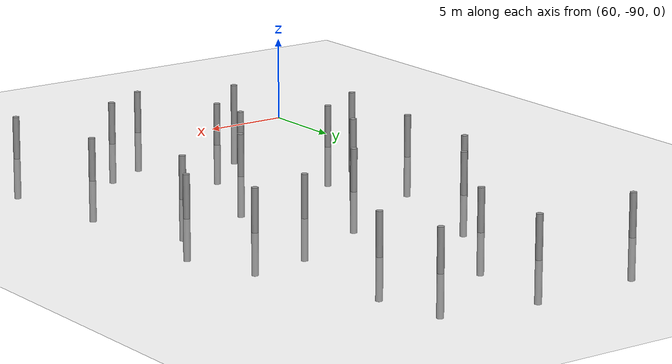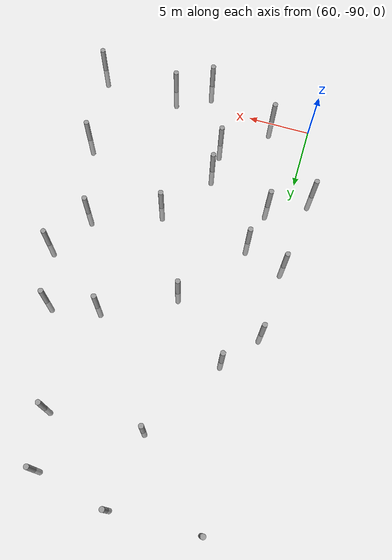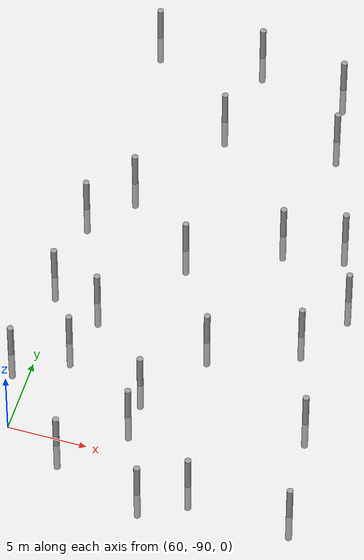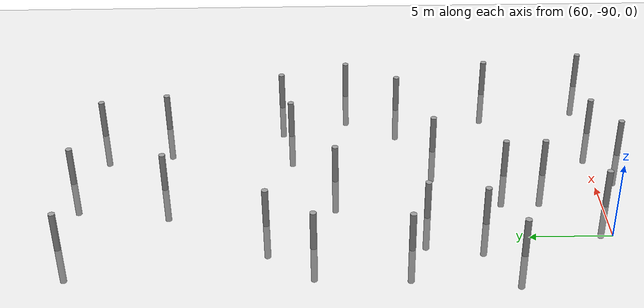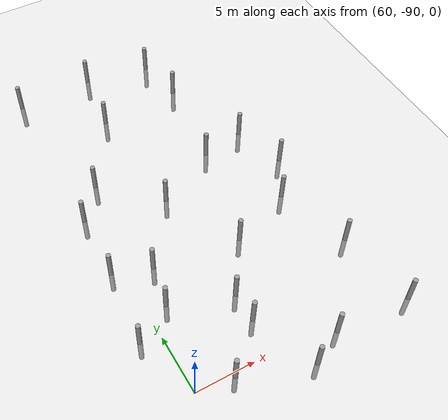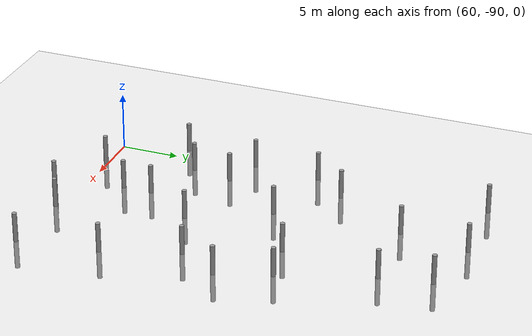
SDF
<sdf version="1.6">
 <world name="default">
  <model name="ground_plane">
   <static>1</static>
   <link name="link">
    <collision name="collision">
     <geometry><plane><normal>0 0 1</normal><size>100 100</size></plane></geometry>
     <surface><friction><ode><mu>100</mu><mu2>50</mu2></ode></friction></surface>
    </collision>
    <visual name="visual">
     <cast_shadows>0</cast_shadows>
     <geometry><plane><normal>0 0 1</normal><size>100 100</size></plane></geometry>
     <material>
      <script><uri>file://media/materials/scripts/gazebo.material</uri><name>Gazebo/Grey</name></script>
     </material>
    </visual>
   </link>
  </model>
  <model name="empty_pillars_13">
   <link name="link">
    <inertial>
     <mass>1</mass>
     <inertia><ixx>0.145833</ixx><ixy>0</ixy><ixz>0</ixz><iyy>0.145833</iyy><iyz>0</iyz><izz>0.125</izz></inertia>
    </inertial>
    <visual name="visual">
     <geometry><cylinder><radius>0.2</radius><length>5</length></cylinder></geometry>
     <material>
      <script><name>Gazebo/Grey</name><uri>file://media/materials/scripts/gazebo.material</uri></script>
      <shader type="vertex"><normal_map>__default__</normal_map></shader>
      <ambient>0.3 0.3 0.3 1</ambient>
      <diffuse>0.7 0.7 0.7 1</diffuse>
      <specular>0.01 0.01 0.01 1</specular>
      <emissive>0 0 0 1</emissive>
     </material>
    </visual>
    <collision name="collision">
     <geometry><cylinder><radius>0.05</radius><length>5</length></cylinder></geometry>
     <surface>
      <friction>
       <ode><mu>1</mu><mu2>1</mu2><fdir1>0 0 0</fdir1><slip1>0</slip1><slip2>0</slip2></ode>
       <torsional>
        <coefficient>1</coefficient>
        <patch_radius>0</patch_radius>
        <surface_radius>0</surface_radius>
        <use_patch_radius>1</use_patch_radius>
        <ode><slip>0</slip></ode>
       </torsional>
      </friction>
      <bounce><restitution_coefficient>0</restitution_coefficient><threshold>1e+06</threshold></bounce>
      <contact>
       <collide_without_contact>0</collide_without_contact>
       <collide_without_contact_bitmask>1</collide_without_contact_bitmask>
       <collide_bitmask>1</collide_bitmask>
       <ode>
        <soft_cfm>0</soft_cfm>
        <soft_erp>0.2</soft_erp>
        <kp>1e+13</kp>
        <kd>1</kd>
        <max_vel>0.01</max_vel>
        <min_depth>0</min_depth>
       </ode>
       <bullet>
        <split_impulse>1</split_impulse>
        <split_impulse_penetration_threshold>-0.01</split_impulse_penetration_threshold>
        <soft_cfm>0</soft_cfm>
        <soft_erp>0.2</soft_erp>
        <kp>1e+13</kp>
        <kd>1</kd>
       </bullet>
      </contact>
     </surface>
    </collision>
   </link>
   <model name="empty_pillar">
    <link name="link">
     <inertial>
      <mass>1</mass>
      <inertia><ixx>0.145833</ixx><ixy>0</ixy><ixz>0</ixz><iyy>0.145833</iyy><iyz>0</iyz><izz>0.125</izz></inertia>
     </inertial>
     <visual name="visual">
      <geometry><cylinder><radius>0.2</radius><length>5</length></cylinder></geometry>
      <material>
       <script><name>Gazebo/Grey</name><uri>file://media/materials/scripts/gazebo.material</uri></script>
       <shader type="vertex"><normal_map>__default__</normal_map></shader>
       <ambient>0.3 0.3 0.3 1</ambient>
       <diffuse>0.7 0.7 0.7 1</diffuse>
       <specular>0.01 0.01 0.01 1</specular>
       <emissive>0 0 0 1</emissive>
      </material>
     </visual>
     <collision name="collision">
      <geometry><cylinder><radius>0.05</radius><length>5</length></cylinder></geometry>
      <surface>
       <friction>
        <ode><mu>1</mu><mu2>1</mu2><fdir1>0 0 0</fdir1><slip1>0</slip1><slip2>0</slip2></ode>
        <torsional>
         <coefficient>1</coefficient>
         <patch_radius>0</patch_radius>
         <surface_radius>0</surface_radius>
         <use_patch_radius>1</use_patch_radius>
         <ode><slip>0</slip></ode>
        </torsional>
       </friction>
       <bounce><restitution_coefficient>0</restitution_coefficient><threshold>1e+06</threshold></bounce>
       <contact>
        <collide_without_contact>0</collide_without_contact>
        <collide_without_contact_bitmask>1</collide_without_contact_bitmask>
        <collide_bitmask>1</collide_bitmask>
        <ode>
         <soft_cfm>0</soft_cfm>
         <soft_erp>0.2</soft_erp>
         <kp>1e+13</kp>
         <kd>1</kd>
         <max_vel>0.01</max_vel>
         <min_depth>0</min_depth>
        </ode>
        <bullet>
         <split_impulse>1</split_impulse>
         <split_impulse_penetration_threshold>-0.01</split_impulse_penetration_threshold>
         <soft_cfm>0</soft_cfm>
         <soft_erp>0.2</soft_erp>
         <kp>1e+13</kp>
         <kd>1</kd>
        </bullet>
       </contact>
      </surface>
     </collision>
    </link>
    <static>0</static>
    <pose>-3.84527 -0.717439 0 0 -0 0</pose>
   </model>
   <model name="empty_pillar_clone">
    <link name="link">
     <inertial>
      <mass>1</mass>
      <inertia><ixx>0.145833</ixx><ixy>0</ixy><ixz>0</ixz><iyy>0.145833</iyy><iyz>0</iyz><izz>0.125</izz></inertia>
     </inertial>
     <visual name="visual">
      <geometry><cylinder><radius>0.2</radius><length>5</length></cylinder></geometry>
      <material>
       <script><name>Gazebo/Grey</name><uri>file://media/materials/scripts/gazebo.material</uri></script>
       <shader type="vertex"><normal_map>__default__</normal_map></shader>
       <ambient>0.3 0.3 0.3 1</ambient>
       <diffuse>0.7 0.7 0.7 1</diffuse>
       <specular>0.01 0.01 0.01 1</specular>
       <emissive>0 0 0 1</emissive>
      </material>
     </visual>
     <collision name="collision">
      <geometry><cylinder><radius>0.05</radius><length>5</length></cylinder></geometry>
      <surface>
       <friction>
        <ode><mu>1</mu><mu2>1</mu2><fdir1>0 0 0</fdir1><slip1>0</slip1><slip2>0</slip2></ode>
        <torsional>
         <coefficient>1</coefficient>
         <patch_radius>0</patch_radius>
         <surface_radius>0</surface_radius>
         <use_patch_radius>1</use_patch_radius>
         <ode><slip>0</slip></ode>
        </torsional>
       </friction>
       <bounce><restitution_coefficient>0</restitution_coefficient><threshold>1e+06</threshold></bounce>
       <contact>
        <collide_without_contact>0</collide_without_contact>
        <collide_without_contact_bitmask>1</collide_without_contact_bitmask>
        <collide_bitmask>1</collide_bitmask>
        <ode>
         <soft_cfm>0</soft_cfm>
         <soft_erp>0.2</soft_erp>
         <kp>1e+13</kp>
         <kd>1</kd>
         <max_vel>0.01</max_vel>
         <min_depth>0</min_depth>
        </ode>
        <bullet>
         <split_impulse>1</split_impulse>
         <split_impulse_penetration_threshold>-0.01</split_impulse_penetration_threshold>
         <soft_cfm>0</soft_cfm>
         <soft_erp>0.2</soft_erp>
         <kp>1e+13</kp>
         <kd>1</kd>
        </bullet>
       </contact>
      </surface>
     </collision>
    </link>
    <static>0</static>
    <pose>1.47843 -4.49529 0 0 -0 0</pose>
   </model>
   <model name="empty_pillar_clone_12">
    <link name="link">
     <inertial>
      <mass>1</mass>
      <inertia><ixx>0.145833</ixx><ixy>0</ixy><ixz>0</ixz><iyy>0.145833</iyy><iyz>0</iyz><izz>0.125</izz></inertia>
     </inertial>
     <visual name="visual">
      <geometry><cylinder><radius>0.2</radius><length>5</length></cylinder></geometry>
      <material>
       <script><name>Gazebo/Grey</name><uri>file://media/materials/scripts/gazebo.material</uri></script>
       <shader type="vertex"><normal_map>__default__</normal_map></shader>
       <ambient>0.3 0.3 0.3 1</ambient>
       <diffuse>0.7 0.7 0.7 1</diffuse>
       <specular>0.01 0.01 0.01 1</specular>
       <emissive>0 0 0 1</emissive>
      </material>
     </visual>
     <collision name="collision">
      <geometry><cylinder><radius>0.05</radius><length>5</length></cylinder></geometry>
      <surface>
       <friction>
        <ode><mu>1</mu><mu2>1</mu2><fdir1>0 0 0</fdir1><slip1>0</slip1><slip2>0</slip2></ode>
        <torsional>
         <coefficient>1</coefficient>
         <patch_radius>0</patch_radius>
         <surface_radius>0</surface_radius>
         <use_patch_radius>1</use_patch_radius>
         <ode><slip>0</slip></ode>
        </torsional>
       </friction>
       <bounce><restitution_coefficient>0</restitution_coefficient><threshold>1e+06</threshold></bounce>
       <contact>
        <collide_without_contact>0</collide_without_contact>
        <collide_without_contact_bitmask>1</collide_without_contact_bitmask>
        <collide_bitmask>1</collide_bitmask>
        <ode>
         <soft_cfm>0</soft_cfm>
         <soft_erp>0.2</soft_erp>
         <kp>1e+13</kp>
         <kd>1</kd>
         <max_vel>0.01</max_vel>
         <min_depth>0</min_depth>
        </ode>
        <bullet>
         <split_impulse>1</split_impulse>
         <split_impulse_penetration_threshold>-0.01</split_impulse_penetration_threshold>
         <soft_cfm>0</soft_cfm>
         <soft_erp>0.2</soft_erp>
         <kp>1e+13</kp>
         <kd>1</kd>
        </bullet>
       </contact>
      </surface>
     </collision>
    </link>
    <static>0</static>
    <pose>-4.01464 -20.8403 0 0 -0 0</pose>
   </model>
   <model name="empty_pillar_clone_13">
    <link name="link">
     <inertial>
      <mass>1</mass>
      <inertia><ixx>0.145833</ixx><ixy>0</ixy><ixz>0</ixz><iyy>0.145833</iyy><iyz>0</iyz><izz>0.125</izz></inertia>
     </inertial>
     <visual name="visual">
      <geometry><cylinder><radius>0.2</radius><length>5</length></cylinder></geometry>
      <material>
       <script><name>Gazebo/Grey</name><uri>file://media/materials/scripts/gazebo.material</uri></script>
       <shader type="vertex"><normal_map>__default__</normal_map></shader>
       <ambient>0.3 0.3 0.3 1</ambient>
       <diffuse>0.7 0.7 0.7 1</diffuse>
       <specular>0.01 0.01 0.01 1</specular>
       <emissive>0 0 0 1</emissive>
      </material>
     </visual>
     <collision name="collision">
      <geometry><cylinder><radius>0.05</radius><length>5</length></cylinder></geometry>
      <surface>
       <friction>
        <ode><mu>1</mu><mu2>1</mu2><fdir1>0 0 0</fdir1><slip1>0</slip1><slip2>0</slip2></ode>
        <torsional>
         <coefficient>1</coefficient>
         <patch_radius>0</patch_radius>
         <surface_radius>0</surface_radius>
         <use_patch_radius>1</use_patch_radius>
         <ode><slip>0</slip></ode>
        </torsional>
       </friction>
       <bounce><restitution_coefficient>0</restitution_coefficient><threshold>1e+06</threshold></bounce>
       <contact>
        <collide_without_contact>0</collide_without_contact>
        <collide_without_contact_bitmask>1</collide_without_contact_bitmask>
        <collide_bitmask>1</collide_bitmask>
        <ode>
         <soft_cfm>0</soft_cfm>
         <soft_erp>0.2</soft_erp>
         <kp>1e+13</kp>
         <kd>1</kd>
         <max_vel>0.01</max_vel>
         <min_depth>0</min_depth>
        </ode>
        <bullet>
         <split_impulse>1</split_impulse>
         <split_impulse_penetration_threshold>-0.01</split_impulse_penetration_threshold>
         <soft_cfm>0</soft_cfm>
         <soft_erp>0.2</soft_erp>
         <kp>1e+13</kp>
         <kd>1</kd>
        </bullet>
       </contact>
      </surface>
     </collision>
    </link>
    <static>0</static>
    <pose>-9.01464 -14.4259 0 0 -0 0</pose>
   </model>
   <model name="empty_pillar_clone_14">
    <link name="link">
     <inertial>
      <mass>1</mass>
      <inertia><ixx>0.145833</ixx><ixy>0</ixy><ixz>0</ixz><iyy>0.145833</iyy><iyz>0</iyz><izz>0.125</izz></inertia>
     </inertial>
     <visual name="visual">
      <geometry><cylinder><radius>0.2</radius><length>5</length></cylinder></geometry>
      <material>
       <script><name>Gazebo/Grey</name><uri>file://media/materials/scripts/gazebo.material</uri></script>
       <shader type="vertex"><normal_map>__default__</normal_map></shader>
       <ambient>0.3 0.3 0.3 1</ambient>
       <diffuse>0.7 0.7 0.7 1</diffuse>
       <specular>0.01 0.01 0.01 1</specular>
       <emissive>0 0 0 1</emissive>
      </material>
     </visual>
     <collision name="collision">
      <geometry><cylinder><radius>0.05</radius><length>5</length></cylinder></geometry>
      <surface>
       <friction>
        <ode><mu>1</mu><mu2>1</mu2><fdir1>0 0 0</fdir1><slip1>0</slip1><slip2>0</slip2></ode>
        <torsional>
         <coefficient>1</coefficient>
         <patch_radius>0</patch_radius>
         <surface_radius>0</surface_radius>
         <use_patch_radius>1</use_patch_radius>
         <ode><slip>0</slip></ode>
        </torsional>
       </friction>
       <bounce><restitution_coefficient>0</restitution_coefficient><threshold>1e+06</threshold></bounce>
       <contact>
        <collide_without_contact>0</collide_without_contact>
        <collide_without_contact_bitmask>1</collide_without_contact_bitmask>
        <collide_bitmask>1</collide_bitmask>
        <ode>
         <soft_cfm>0</soft_cfm>
         <soft_erp>0.2</soft_erp>
         <kp>1e+13</kp>
         <kd>1</kd>
         <max_vel>0.01</max_vel>
         <min_depth>0</min_depth>
        </ode>
        <bullet>
         <split_impulse>1</split_impulse>
         <split_impulse_penetration_threshold>-0.01</split_impulse_penetration_threshold>
         <soft_cfm>0</soft_cfm>
         <soft_erp>0.2</soft_erp>
         <kp>1e+13</kp>
         <kd>1</kd>
        </bullet>
       </contact>
      </surface>
     </collision>
    </link>
    <static>0</static>
    <pose>-14.0146 0.646152 0 0 -0 0</pose>
   </model>
   <model name="empty_pillar_clone_15">
    <link name="link">
     <inertial>
      <mass>1</mass>
      <inertia><ixx>0.145833</ixx><ixy>0</ixy><ixz>0</ixz><iyy>0.145833</iyy><iyz>0</iyz><izz>0.125</izz></inertia>
     </inertial>
     <visual name="visual">
      <geometry><cylinder><radius>0.2</radius><length>5</length></cylinder></geometry>
      <material>
       <script><name>Gazebo/Grey</name><uri>file://media/materials/scripts/gazebo.material</uri></script>
       <shader type="vertex"><normal_map>__default__</normal_map></shader>
       <ambient>0.3 0.3 0.3 1</ambient>
       <diffuse>0.7 0.7 0.7 1</diffuse>
       <specular>0.01 0.01 0.01 1</specular>
       <emissive>0 0 0 1</emissive>
      </material>
     </visual>
     <collision name="collision">
      <geometry><cylinder><radius>0.05</radius><length>5</length></cylinder></geometry>
      <surface>
       <friction>
        <ode><mu>1</mu><mu2>1</mu2><fdir1>0 0 0</fdir1><slip1>0</slip1><slip2>0</slip2></ode>
        <torsional>
         <coefficient>1</coefficient>
         <patch_radius>0</patch_radius>
         <surface_radius>0</surface_radius>
         <use_patch_radius>1</use_patch_radius>
         <ode><slip>0</slip></ode>
        </torsional>
       </friction>
       <bounce><restitution_coefficient>0</restitution_coefficient><threshold>1e+06</threshold></bounce>
       <contact>
        <collide_without_contact>0</collide_without_contact>
        <collide_without_contact_bitmask>1</collide_without_contact_bitmask>
        <collide_bitmask>1</collide_bitmask>
        <ode>
         <soft_cfm>0</soft_cfm>
         <soft_erp>0.2</soft_erp>
         <kp>1e+13</kp>
         <kd>1</kd>
         <max_vel>0.01</max_vel>
         <min_depth>0</min_depth>
        </ode>
        <bullet>
         <split_impulse>1</split_impulse>
         <split_impulse_penetration_threshold>-0.01</split_impulse_penetration_threshold>
         <soft_cfm>0</soft_cfm>
         <soft_erp>0.2</soft_erp>
         <kp>1e+13</kp>
         <kd>1</kd>
        </bullet>
       </contact>
      </surface>
     </collision>
    </link>
    <static>0</static>
    <pose>-9.37193 -3.58732 0 0 -0 0</pose>
   </model>
   <model name="empty_pillar_clone_16">
    <link name="link">
     <inertial>
      <mass>1</mass>
      <inertia><ixx>0.145833</ixx><ixy>0</ixy><ixz>0</ixz><iyy>0.145833</iyy><iyz>0</iyz><izz>0.125</izz></inertia>
     </inertial>
     <visual name="visual">
      <geometry><cylinder><radius>0.2</radius><length>5</length></cylinder></geometry>
      <material>
       <script><name>Gazebo/Grey</name><uri>file://media/materials/scripts/gazebo.material</uri></script>
       <shader type="vertex"><normal_map>__default__</normal_map></shader>
       <ambient>0.3 0.3 0.3 1</ambient>
       <diffuse>0.7 0.7 0.7 1</diffuse>
       <specular>0.01 0.01 0.01 1</specular>
       <emissive>0 0 0 1</emissive>
      </material>
     </visual>
     <collision name="collision">
      <geometry><cylinder><radius>0.05</radius><length>5</length></cylinder></geometry>
      <surface>
       <friction>
        <ode><mu>1</mu><mu2>1</mu2><fdir1>0 0 0</fdir1><slip1>0</slip1><slip2>0</slip2></ode>
        <torsional>
         <coefficient>1</coefficient>
         <patch_radius>0</patch_radius>
         <surface_radius>0</surface_radius>
         <use_patch_radius>1</use_patch_radius>
         <ode><slip>0</slip></ode>
        </torsional>
       </friction>
       <bounce><restitution_coefficient>0</restitution_coefficient><threshold>1e+06</threshold></bounce>
       <contact>
        <collide_without_contact>0</collide_without_contact>
        <collide_without_contact_bitmask>1</collide_without_contact_bitmask>
        <collide_bitmask>1</collide_bitmask>
        <ode>
         <soft_cfm>0</soft_cfm>
         <soft_erp>0.2</soft_erp>
         <kp>1e+13</kp>
         <kd>1</kd>
         <max_vel>0.01</max_vel>
         <min_depth>0</min_depth>
        </ode>
        <bullet>
         <split_impulse>1</split_impulse>
         <split_impulse_penetration_threshold>-0.01</split_impulse_penetration_threshold>
         <soft_cfm>0</soft_cfm>
         <soft_erp>0.2</soft_erp>
         <kp>1e+13</kp>
         <kd>1</kd>
        </bullet>
       </contact>
      </surface>
     </collision>
    </link>
    <static>0</static>
    <pose>-9.20789 13.0504 0 0 -0 0</pose>
   </model>
   <model name="empty_pillar_clone_17">
    <link name="link">
     <inertial>
      <mass>1</mass>
      <inertia><ixx>0.145833</ixx><ixy>0</ixy><ixz>0</ixz><iyy>0.145833</iyy><iyz>0</iyz><izz>0.125</izz></inertia>
     </inertial>
     <visual name="visual">
      <geometry><cylinder><radius>0.2</radius><length>5</length></cylinder></geometry>
      <material>
       <script><name>Gazebo/Grey</name><uri>file://media/materials/scripts/gazebo.material</uri></script>
       <shader type="vertex"><normal_map>__default__</normal_map></shader>
       <ambient>0.3 0.3 0.3 1</ambient>
       <diffuse>0.7 0.7 0.7 1</diffuse>
       <specular>0.01 0.01 0.01 1</specular>
       <emissive>0 0 0 1</emissive>
      </material>
     </visual>
     <collision name="collision">
      <geometry><cylinder><radius>0.05</radius><length>5</length></cylinder></geometry>
      <surface>
       <friction>
        <ode><mu>1</mu><mu2>1</mu2><fdir1>0 0 0</fdir1><slip1>0</slip1><slip2>0</slip2></ode>
        <torsional>
         <coefficient>1</coefficient>
         <patch_radius>0</patch_radius>
         <surface_radius>0</surface_radius>
         <use_patch_radius>1</use_patch_radius>
         <ode><slip>0</slip></ode>
        </torsional>
       </friction>
       <bounce><restitution_coefficient>0</restitution_coefficient><threshold>1e+06</threshold></bounce>
       <contact>
        <collide_without_contact>0</collide_without_contact>
        <collide_without_contact_bitmask>1</collide_without_contact_bitmask>
        <collide_bitmask>1</collide_bitmask>
        <ode>
         <soft_cfm>0</soft_cfm>
         <soft_erp>0.2</soft_erp>
         <kp>1e+13</kp>
         <kd>1</kd>
         <max_vel>0.01</max_vel>
         <min_depth>0</min_depth>
        </ode>
        <bullet>
         <split_impulse>1</split_impulse>
         <split_impulse_penetration_threshold>-0.01</split_impulse_penetration_threshold>
         <soft_cfm>0</soft_cfm>
         <soft_erp>0.2</soft_erp>
         <kp>1e+13</kp>
         <kd>1</kd>
        </bullet>
       </contact>
      </surface>
     </collision>
    </link>
    <static>0</static>
    <pose>-16.0449 12.755 0 0 -0 0</pose>
   </model>
   <model name="empty_pillar_clone_19">
    <link name="link">
     <inertial>
      <mass>1</mass>
      <inertia><ixx>0.145833</ixx><ixy>0</ixy><ixz>0</ixz><iyy>0.145833</iyy><iyz>0</iyz><izz>0.125</izz></inertia>
     </inertial>
     <visual name="visual">
      <geometry><cylinder><radius>0.2</radius><length>5</length></cylinder></geometry>
      <material>
       <script><name>Gazebo/Grey</name><uri>file://media/materials/scripts/gazebo.material</uri></script>
       <shader type="vertex"><normal_map>__default__</normal_map></shader>
       <ambient>0.3 0.3 0.3 1</ambient>
       <diffuse>0.7 0.7 0.7 1</diffuse>
       <specular>0.01 0.01 0.01 1</specular>
       <emissive>0 0 0 1</emissive>
      </material>
     </visual>
     <collision name="collision">
      <geometry><cylinder><radius>0.05</radius><length>5</length></cylinder></geometry>
      <surface>
       <friction>
        <ode><mu>1</mu><mu2>1</mu2><fdir1>0 0 0</fdir1><slip1>0</slip1><slip2>0</slip2></ode>
        <torsional>
         <coefficient>1</coefficient>
         <patch_radius>0</patch_radius>
         <surface_radius>0</surface_radius>
         <use_patch_radius>1</use_patch_radius>
         <ode><slip>0</slip></ode>
        </torsional>
       </friction>
       <bounce><restitution_coefficient>0</restitution_coefficient><threshold>1e+06</threshold></bounce>
       <contact>
        <collide_without_contact>0</collide_without_contact>
        <collide_without_contact_bitmask>1</collide_without_contact_bitmask>
        <collide_bitmask>1</collide_bitmask>
        <ode>
         <soft_cfm>0</soft_cfm>
         <soft_erp>0.2</soft_erp>
         <kp>1e+13</kp>
         <kd>1</kd>
         <max_vel>0.01</max_vel>
         <min_depth>0</min_depth>
        </ode>
        <bullet>
         <split_impulse>1</split_impulse>
         <split_impulse_penetration_threshold>-0.01</split_impulse_penetration_threshold>
         <soft_cfm>0</soft_cfm>
         <soft_erp>0.2</soft_erp>
         <kp>1e+13</kp>
         <kd>1</kd>
        </bullet>
       </contact>
      </surface>
     </collision>
    </link>
    <static>0</static>
    <pose>-10.0146 7.15966 0 0 -0 0</pose>
   </model>
   <model name="empty_pillar_clone_24">
    <link name="link">
     <inertial>
      <mass>1</mass>
      <inertia><ixx>0.145833</ixx><ixy>0</ixy><ixz>0</ixz><iyy>0.145833</iyy><iyz>0</iyz><izz>0.125</izz></inertia>
     </inertial>
     <visual name="visual">
      <geometry><cylinder><radius>0.2</radius><length>5</length></cylinder></geometry>
      <material>
       <script><name>Gazebo/Grey</name><uri>file://media/materials/scripts/gazebo.material</uri></script>
       <shader type="vertex"><normal_map>__default__</normal_map></shader>
       <ambient>0.3 0.3 0.3 1</ambient>
       <diffuse>0.7 0.7 0.7 1</diffuse>
       <specular>0.01 0.01 0.01 1</specular>
       <emissive>0 0 0 1</emissive>
      </material>
     </visual>
     <collision name="collision">
      <geometry><cylinder><radius>0.05</radius><length>5</length></cylinder></geometry>
      <surface>
       <friction>
        <ode><mu>1</mu><mu2>1</mu2><fdir1>0 0 0</fdir1><slip1>0</slip1><slip2>0</slip2></ode>
        <torsional>
         <coefficient>1</coefficient>
         <patch_radius>0</patch_radius>
         <surface_radius>0</surface_radius>
         <use_patch_radius>1</use_patch_radius>
         <ode><slip>0</slip></ode>
        </torsional>
       </friction>
       <bounce><restitution_coefficient>0</restitution_coefficient><threshold>1e+06</threshold></bounce>
       <contact>
        <collide_without_contact>0</collide_without_contact>
        <collide_without_contact_bitmask>1</collide_without_contact_bitmask>
        <collide_bitmask>1</collide_bitmask>
        <ode>
         <soft_cfm>0</soft_cfm>
         <soft_erp>0.2</soft_erp>
         <kp>1e+13</kp>
         <kd>1</kd>
         <max_vel>0.01</max_vel>
         <min_depth>0</min_depth>
        </ode>
        <bullet>
         <split_impulse>1</split_impulse>
         <split_impulse_penetration_threshold>-0.01</split_impulse_penetration_threshold>
         <soft_cfm>0</soft_cfm>
         <soft_erp>0.2</soft_erp>
         <kp>1e+13</kp>
         <kd>1</kd>
        </bullet>
       </contact>
      </surface>
     </collision>
    </link>
    <static>0</static>
    <pose>-3.46957 11.9413 0 0 -0 0</pose>
   </model>
   <model name="empty_pillar_clone_37">
    <link name="link">
     <inertial>
      <mass>1</mass>
      <inertia><ixx>0.145833</ixx><ixy>0</ixy><ixz>0</ixz><iyy>0.145833</iyy><iyz>0</iyz><izz>0.125</izz></inertia>
     </inertial>
     <visual name="visual">
      <geometry><cylinder><radius>0.2</radius><length>5</length></cylinder></geometry>
      <material>
       <script><name>Gazebo/Grey</name><uri>file://media/materials/scripts/gazebo.material</uri></script>
       <shader type="vertex"><normal_map>__default__</normal_map></shader>
       <ambient>0.3 0.3 0.3 1</ambient>
       <diffuse>0.7 0.7 0.7 1</diffuse>
       <specular>0.01 0.01 0.01 1</specular>
       <emissive>0 0 0 1</emissive>
      </material>
     </visual>
     <collision name="collision">
      <geometry><cylinder><radius>0.05</radius><length>5</length></cylinder></geometry>
      <surface>
       <friction>
        <ode><mu>1</mu><mu2>1</mu2><fdir1>0 0 0</fdir1><slip1>0</slip1><slip2>0</slip2></ode>
        <torsional>
         <coefficient>1</coefficient>
         <patch_radius>0</patch_radius>
         <surface_radius>0</surface_radius>
         <use_patch_radius>1</use_patch_radius>
         <ode><slip>0</slip></ode>
        </torsional>
       </friction>
       <bounce><restitution_coefficient>0</restitution_coefficient><threshold>1e+06</threshold></bounce>
       <contact>
        <collide_without_contact>0</collide_without_contact>
        <collide_without_contact_bitmask>1</collide_without_contact_bitmask>
        <collide_bitmask>1</collide_bitmask>
        <ode>
         <soft_cfm>0</soft_cfm>
         <soft_erp>0.2</soft_erp>
         <kp>1e+13</kp>
         <kd>1</kd>
         <max_vel>0.01</max_vel>
         <min_depth>0</min_depth>
        </ode>
        <bullet>
         <split_impulse>1</split_impulse>
         <split_impulse_penetration_threshold>-0.01</split_impulse_penetration_threshold>
         <soft_cfm>0</soft_cfm>
         <soft_erp>0.2</soft_erp>
         <kp>1e+13</kp>
         <kd>1</kd>
        </bullet>
       </contact>
      </surface>
     </collision>
    </link>
    <static>0</static>
    <pose>-16.6035 -7.98282 0 0 -0 0</pose>
   </model>
   <model name="empty_pillar_clone_38">
    <link name="link">
     <inertial>
      <mass>1</mass>
      <inertia><ixx>0.145833</ixx><ixy>0</ixy><ixz>0</ixz><iyy>0.145833</iyy><iyz>0</iyz><izz>0.125</izz></inertia>
     </inertial>
     <visual name="visual">
      <geometry><cylinder><radius>0.2</radius><length>5</length></cylinder></geometry>
      <material>
       <script><name>Gazebo/Grey</name><uri>file://media/materials/scripts/gazebo.material</uri></script>
       <shader type="vertex"><normal_map>__default__</normal_map></shader>
       <ambient>0.3 0.3 0.3 1</ambient>
       <diffuse>0.7 0.7 0.7 1</diffuse>
       <specular>0.01 0.01 0.01 1</specular>
       <emissive>0 0 0 1</emissive>
      </material>
     </visual>
     <collision name="collision">
      <geometry><cylinder><radius>0.05</radius><length>5</length></cylinder></geometry>
      <surface>
       <friction>
        <ode><mu>1</mu><mu2>1</mu2><fdir1>0 0 0</fdir1><slip1>0</slip1><slip2>0</slip2></ode>
        <torsional>
         <coefficient>1</coefficient>
         <patch_radius>0</patch_radius>
         <surface_radius>0</surface_radius>
         <use_patch_radius>1</use_patch_radius>
         <ode><slip>0</slip></ode>
        </torsional>
       </friction>
       <bounce><restitution_coefficient>0</restitution_coefficient><threshold>1e+06</threshold></bounce>
       <contact>
        <collide_without_contact>0</collide_without_contact>
        <collide_without_contact_bitmask>1</collide_without_contact_bitmask>
        <collide_bitmask>1</collide_bitmask>
        <ode>
         <soft_cfm>0</soft_cfm>
         <soft_erp>0.2</soft_erp>
         <kp>1e+13</kp>
         <kd>1</kd>
         <max_vel>0.01</max_vel>
         <min_depth>0</min_depth>
        </ode>
        <bullet>
         <split_impulse>1</split_impulse>
         <split_impulse_penetration_threshold>-0.01</split_impulse_penetration_threshold>
         <soft_cfm>0</soft_cfm>
         <soft_erp>0.2</soft_erp>
         <kp>1e+13</kp>
         <kd>1</kd>
        </bullet>
       </contact>
      </surface>
     </collision>
    </link>
    <static>0</static>
    <pose>-16.33 -2.21607 0 0 -0 0</pose>
   </model>
   <model name="empty_pillar_clone_39">
    <link name="link">
     <inertial>
      <mass>1</mass>
      <inertia><ixx>0.145833</ixx><ixy>0</ixy><ixz>0</ixz><iyy>0.145833</iyy><iyz>0</iyz><izz>0.125</izz></inertia>
     </inertial>
     <visual name="visual">
      <geometry><cylinder><radius>0.2</radius><length>5</length></cylinder></geometry>
      <material>
       <script><name>Gazebo/Grey</name><uri>file://media/materials/scripts/gazebo.material</uri></script>
       <shader type="vertex"><normal_map>__default__</normal_map></shader>
       <ambient>0.3 0.3 0.3 1</ambient>
       <diffuse>0.7 0.7 0.7 1</diffuse>
       <specular>0.01 0.01 0.01 1</specular>
       <emissive>0 0 0 1</emissive>
      </material>
     </visual>
     <collision name="collision">
      <geometry><cylinder><radius>0.05</radius><length>5</length></cylinder></geometry>
      <surface>
       <friction>
        <ode><mu>1</mu><mu2>1</mu2><fdir1>0 0 0</fdir1><slip1>0</slip1><slip2>0</slip2></ode>
        <torsional>
         <coefficient>1</coefficient>
         <patch_radius>0</patch_radius>
         <surface_radius>0</surface_radius>
         <use_patch_radius>1</use_patch_radius>
         <ode><slip>0</slip></ode>
        </torsional>
       </friction>
       <bounce><restitution_coefficient>0</restitution_coefficient><threshold>1e+06</threshold></bounce>
       <contact>
        <collide_without_contact>0</collide_without_contact>
        <collide_without_contact_bitmask>1</collide_without_contact_bitmask>
        <collide_bitmask>1</collide_bitmask>
        <ode>
         <soft_cfm>0</soft_cfm>
         <soft_erp>0.2</soft_erp>
         <kp>1e+13</kp>
         <kd>1</kd>
         <max_vel>0.01</max_vel>
         <min_depth>0</min_depth>
        </ode>
        <bullet>
         <split_impulse>1</split_impulse>
         <split_impulse_penetration_threshold>-0.01</split_impulse_penetration_threshold>
         <soft_cfm>0</soft_cfm>
         <soft_erp>0.2</soft_erp>
         <kp>1e+13</kp>
         <kd>1</kd>
        </bullet>
       </contact>
      </surface>
     </collision>
    </link>
    <static>0</static>
    <pose>-13.4361 -9.12638 0 0 -0 0</pose>
   </model>
   <model name="empty_pillar_clone_4">
    <link name="link">
     <inertial>
      <mass>1</mass>
      <inertia><ixx>0.145833</ixx><ixy>0</ixy><ixz>0</ixz><iyy>0.145833</iyy><iyz>0</iyz><izz>0.125</izz></inertia>
     </inertial>
     <visual name="visual">
      <geometry><cylinder><radius>0.2</radius><length>5</length></cylinder></geometry>
      <material>
       <script><name>Gazebo/Grey</name><uri>file://media/materials/scripts/gazebo.material</uri></script>
       <shader type="vertex"><normal_map>__default__</normal_map></shader>
       <ambient>0.3 0.3 0.3 1</ambient>
       <diffuse>0.7 0.7 0.7 1</diffuse>
       <specular>0.01 0.01 0.01 1</specular>
       <emissive>0 0 0 1</emissive>
      </material>
     </visual>
     <collision name="collision">
      <geometry><cylinder><radius>0.05</radius><length>5</length></cylinder></geometry>
      <surface>
       <friction>
        <ode><mu>1</mu><mu2>1</mu2><fdir1>0 0 0</fdir1><slip1>0</slip1><slip2>0</slip2></ode>
        <torsional>
         <coefficient>1</coefficient>
         <patch_radius>0</patch_radius>
         <surface_radius>0</surface_radius>
         <use_patch_radius>1</use_patch_radius>
         <ode><slip>0</slip></ode>
        </torsional>
       </friction>
       <bounce><restitution_coefficient>0</restitution_coefficient><threshold>1e+06</threshold></bounce>
       <contact>
        <collide_without_contact>0</collide_without_contact>
        <collide_without_contact_bitmask>1</collide_without_contact_bitmask>
        <collide_bitmask>1</collide_bitmask>
        <ode>
         <soft_cfm>0</soft_cfm>
         <soft_erp>0.2</soft_erp>
         <kp>1e+13</kp>
         <kd>1</kd>
         <max_vel>0.01</max_vel>
         <min_depth>0</min_depth>
        </ode>
        <bullet>
         <split_impulse>1</split_impulse>
         <split_impulse_penetration_threshold>-0.01</split_impulse_penetration_threshold>
         <soft_cfm>0</soft_cfm>
         <soft_erp>0.2</soft_erp>
         <kp>1e+13</kp>
         <kd>1</kd>
        </bullet>
       </contact>
      </surface>
     </collision>
    </link>
    <static>0</static>
    <pose>1.48428 -14.2998 0 0 -0 0</pose>
   </model>
   <model name="empty_pillar_clone_40">
    <link name="link">
     <inertial>
      <mass>1</mass>
      <inertia><ixx>0.145833</ixx><ixy>0</ixy><ixz>0</ixz><iyy>0.145833</iyy><iyz>0</iyz><izz>0.125</izz></inertia>
     </inertial>
     <visual name="visual">
      <geometry><cylinder><radius>0.2</radius><length>5</length></cylinder></geometry>
      <material>
       <script><name>Gazebo/Grey</name><uri>file://media/materials/scripts/gazebo.material</uri></script>
       <shader type="vertex"><normal_map>__default__</normal_map></shader>
       <ambient>0.3 0.3 0.3 1</ambient>
       <diffuse>0.7 0.7 0.7 1</diffuse>
       <specular>0.01 0.01 0.01 1</specular>
       <emissive>0 0 0 1</emissive>
      </material>
     </visual>
     <collision name="collision">
      <geometry><cylinder><radius>0.05</radius><length>5</length></cylinder></geometry>
      <surface>
       <friction>
        <ode><mu>1</mu><mu2>1</mu2><fdir1>0 0 0</fdir1><slip1>0</slip1><slip2>0</slip2></ode>
        <torsional>
         <coefficient>1</coefficient>
         <patch_radius>0</patch_radius>
         <surface_radius>0</surface_radius>
         <use_patch_radius>1</use_patch_radius>
         <ode><slip>0</slip></ode>
        </torsional>
       </friction>
       <bounce><restitution_coefficient>0</restitution_coefficient><threshold>1e+06</threshold></bounce>
       <contact>
        <collide_without_contact>0</collide_without_contact>
        <collide_without_contact_bitmask>1</collide_without_contact_bitmask>
        <collide_bitmask>1</collide_bitmask>
        <ode>
         <soft_cfm>0</soft_cfm>
         <soft_erp>0.2</soft_erp>
         <kp>1e+13</kp>
         <kd>1</kd>
         <max_vel>0.01</max_vel>
         <min_depth>0</min_depth>
        </ode>
        <bullet>
         <split_impulse>1</split_impulse>
         <split_impulse_penetration_threshold>-0.01</split_impulse_penetration_threshold>
         <soft_cfm>0</soft_cfm>
         <soft_erp>0.2</soft_erp>
         <kp>1e+13</kp>
         <kd>1</kd>
        </bullet>
       </contact>
      </surface>
     </collision>
    </link>
    <static>0</static>
    <pose>-17.318 -14.4851 0 0 -0 0</pose>
   </model>
   <model name="empty_pillar_clone_41">
    <link name="link">
     <inertial>
      <mass>1</mass>
      <inertia><ixx>0.145833</ixx><ixy>0</ixy><ixz>0</ixz><iyy>0.145833</iyy><iyz>0</iyz><izz>0.125</izz></inertia>
     </inertial>
     <visual name="visual">
      <geometry><cylinder><radius>0.2</radius><length>5</length></cylinder></geometry>
      <material>
       <script><name>Gazebo/Grey</name><uri>file://media/materials/scripts/gazebo.material</uri></script>
       <shader type="vertex"><normal_map>__default__</normal_map></shader>
       <ambient>0.3 0.3 0.3 1</ambient>
       <diffuse>0.7 0.7 0.7 1</diffuse>
       <specular>0.01 0.01 0.01 1</specular>
       <emissive>0 0 0 1</emissive>
      </material>
     </visual>
     <collision name="collision">
      <geometry><cylinder><radius>0.05</radius><length>5</length></cylinder></geometry>
      <surface>
       <friction>
        <ode><mu>1</mu><mu2>1</mu2><fdir1>0 0 0</fdir1><slip1>0</slip1><slip2>0</slip2></ode>
        <torsional>
         <coefficient>1</coefficient>
         <patch_radius>0</patch_radius>
         <surface_radius>0</surface_radius>
         <use_patch_radius>1</use_patch_radius>
         <ode><slip>0</slip></ode>
        </torsional>
       </friction>
       <bounce><restitution_coefficient>0</restitution_coefficient><threshold>1e+06</threshold></bounce>
       <contact>
        <collide_without_contact>0</collide_without_contact>
        <collide_without_contact_bitmask>1</collide_without_contact_bitmask>
        <collide_bitmask>1</collide_bitmask>
        <ode>
         <soft_cfm>0</soft_cfm>
         <soft_erp>0.2</soft_erp>
         <kp>1e+13</kp>
         <kd>1</kd>
         <max_vel>0.01</max_vel>
         <min_depth>0</min_depth>
        </ode>
        <bullet>
         <split_impulse>1</split_impulse>
         <split_impulse_penetration_threshold>-0.01</split_impulse_penetration_threshold>
         <soft_cfm>0</soft_cfm>
         <soft_erp>0.2</soft_erp>
         <kp>1e+13</kp>
         <kd>1</kd>
        </bullet>
       </contact>
      </surface>
     </collision>
    </link>
    <static>0</static>
    <pose>-14.1448 -12.6326 0 0 -0 0</pose>
   </model>
   <model name="empty_pillar_clone_42">
    <link name="link">
     <inertial>
      <mass>1</mass>
      <inertia><ixx>0.145833</ixx><ixy>0</ixy><ixz>0</ixz><iyy>0.145833</iyy><iyz>0</iyz><izz>0.125</izz></inertia>
     </inertial>
     <visual name="visual">
      <geometry><cylinder><radius>0.2</radius><length>5</length></cylinder></geometry>
      <material>
       <script><name>Gazebo/Grey</name><uri>file://media/materials/scripts/gazebo.material</uri></script>
       <shader type="vertex"><normal_map>__default__</normal_map></shader>
       <ambient>0.3 0.3 0.3 1</ambient>
       <diffuse>0.7 0.7 0.7 1</diffuse>
       <specular>0.01 0.01 0.01 1</specular>
       <emissive>0 0 0 1</emissive>
      </material>
     </visual>
     <collision name="collision">
      <geometry><cylinder><radius>0.05</radius><length>5</length></cylinder></geometry>
      <surface>
       <friction>
        <ode><mu>1</mu><mu2>1</mu2><fdir1>0 0 0</fdir1><slip1>0</slip1><slip2>0</slip2></ode>
        <torsional>
         <coefficient>1</coefficient>
         <patch_radius>0</patch_radius>
         <surface_radius>0</surface_radius>
         <use_patch_radius>1</use_patch_radius>
         <ode><slip>0</slip></ode>
        </torsional>
       </friction>
       <bounce><restitution_coefficient>0</restitution_coefficient><threshold>1e+06</threshold></bounce>
       <contact>
        <collide_without_contact>0</collide_without_contact>
        <collide_without_contact_bitmask>1</collide_without_contact_bitmask>
        <collide_bitmask>1</collide_bitmask>
        <ode>
         <soft_cfm>0</soft_cfm>
         <soft_erp>0.2</soft_erp>
         <kp>1e+13</kp>
         <kd>1</kd>
         <max_vel>0.01</max_vel>
         <min_depth>0</min_depth>
        </ode>
        <bullet>
         <split_impulse>1</split_impulse>
         <split_impulse_penetration_threshold>-0.01</split_impulse_penetration_threshold>
         <soft_cfm>0</soft_cfm>
         <soft_erp>0.2</soft_erp>
         <kp>1e+13</kp>
         <kd>1</kd>
        </bullet>
       </contact>
      </surface>
     </collision>
    </link>
    <static>0</static>
    <pose>-12.5409 -20.2416 0 0 -0 0</pose>
   </model>
   <model name="empty_pillar_clone_44">
    <link name="link">
     <inertial>
      <mass>1</mass>
      <inertia><ixx>0.145833</ixx><ixy>0</ixy><ixz>0</ixz><iyy>0.145833</iyy><iyz>0</iyz><izz>0.125</izz></inertia>
     </inertial>
     <visual name="visual">
      <geometry><cylinder><radius>0.2</radius><length>5</length></cylinder></geometry>
      <material>
       <script><name>Gazebo/Grey</name><uri>file://media/materials/scripts/gazebo.material</uri></script>
       <shader type="vertex"><normal_map>__default__</normal_map></shader>
       <ambient>0.3 0.3 0.3 1</ambient>
       <diffuse>0.7 0.7 0.7 1</diffuse>
       <specular>0.01 0.01 0.01 1</specular>
       <emissive>0 0 0 1</emissive>
      </material>
     </visual>
     <collision name="collision">
      <geometry><cylinder><radius>0.05</radius><length>5</length></cylinder></geometry>
      <surface>
       <friction>
        <ode><mu>1</mu><mu2>1</mu2><fdir1>0 0 0</fdir1><slip1>0</slip1><slip2>0</slip2></ode>
        <torsional>
         <coefficient>1</coefficient>
         <patch_radius>0</patch_radius>
         <surface_radius>0</surface_radius>
         <use_patch_radius>1</use_patch_radius>
         <ode><slip>0</slip></ode>
        </torsional>
       </friction>
       <bounce><restitution_coefficient>0</restitution_coefficient><threshold>1e+06</threshold></bounce>
       <contact>
        <collide_without_contact>0</collide_without_contact>
        <collide_without_contact_bitmask>1</collide_without_contact_bitmask>
        <collide_bitmask>1</collide_bitmask>
        <ode>
         <soft_cfm>0</soft_cfm>
         <soft_erp>0.2</soft_erp>
         <kp>1e+13</kp>
         <kd>1</kd>
         <max_vel>0.01</max_vel>
         <min_depth>0</min_depth>
        </ode>
        <bullet>
         <split_impulse>1</split_impulse>
         <split_impulse_penetration_threshold>-0.01</split_impulse_penetration_threshold>
         <soft_cfm>0</soft_cfm>
         <soft_erp>0.2</soft_erp>
         <kp>1e+13</kp>
         <kd>1</kd>
        </bullet>
       </contact>
      </surface>
     </collision>
    </link>
    <static>0</static>
    <pose>-6.78285 -22.2729 0 0 -0 0</pose>
   </model>
   <model name="empty_pillar_clone_45">
    <link name="link">
     <inertial>
      <mass>1</mass>
      <inertia><ixx>0.145833</ixx><ixy>0</ixy><ixz>0</ixz><iyy>0.145833</iyy><iyz>0</iyz><izz>0.125</izz></inertia>
     </inertial>
     <visual name="visual">
      <geometry><cylinder><radius>0.2</radius><length>5</length></cylinder></geometry>
      <material>
       <script><name>Gazebo/Grey</name><uri>file://media/materials/scripts/gazebo.material</uri></script>
       <shader type="vertex"><normal_map>__default__</normal_map></shader>
       <ambient>0.3 0.3 0.3 1</ambient>
       <diffuse>0.7 0.7 0.7 1</diffuse>
       <specular>0.01 0.01 0.01 1</specular>
       <emissive>0 0 0 1</emissive>
      </material>
     </visual>
     <collision name="collision">
      <geometry><cylinder><radius>0.05</radius><length>5</length></cylinder></geometry>
      <surface>
       <friction>
        <ode><mu>1</mu><mu2>1</mu2><fdir1>0 0 0</fdir1><slip1>0</slip1><slip2>0</slip2></ode>
        <torsional>
         <coefficient>1</coefficient>
         <patch_radius>0</patch_radius>
         <surface_radius>0</surface_radius>
         <use_patch_radius>1</use_patch_radius>
         <ode><slip>0</slip></ode>
        </torsional>
       </friction>
       <bounce><restitution_coefficient>0</restitution_coefficient><threshold>1e+06</threshold></bounce>
       <contact>
        <collide_without_contact>0</collide_without_contact>
        <collide_without_contact_bitmask>1</collide_without_contact_bitmask>
        <collide_bitmask>1</collide_bitmask>
        <ode>
         <soft_cfm>0</soft_cfm>
         <soft_erp>0.2</soft_erp>
         <kp>1e+13</kp>
         <kd>1</kd>
         <max_vel>0.01</max_vel>
         <min_depth>0</min_depth>
        </ode>
        <bullet>
         <split_impulse>1</split_impulse>
         <split_impulse_penetration_threshold>-0.01</split_impulse_penetration_threshold>
         <soft_cfm>0</soft_cfm>
         <soft_erp>0.2</soft_erp>
         <kp>1e+13</kp>
         <kd>1</kd>
        </bullet>
       </contact>
      </surface>
     </collision>
    </link>
    <static>0</static>
    <pose>-9.01076 -16.9307 0 0 -0 0</pose>
   </model>
   <model name="empty_pillar_clone_46">
    <link name="link">
     <inertial>
      <mass>1</mass>
      <inertia><ixx>0.145833</ixx><ixy>0</ixy><ixz>0</ixz><iyy>0.145833</iyy><iyz>0</iyz><izz>0.125</izz></inertia>
     </inertial>
     <visual name="visual">
      <geometry><cylinder><radius>0.2</radius><length>5</length></cylinder></geometry>
      <material>
       <script><name>Gazebo/Grey</name><uri>file://media/materials/scripts/gazebo.material</uri></script>
       <shader type="vertex"><normal_map>__default__</normal_map></shader>
       <ambient>0.3 0.3 0.3 1</ambient>
       <diffuse>0.7 0.7 0.7 1</diffuse>
       <specular>0.01 0.01 0.01 1</specular>
       <emissive>0 0 0 1</emissive>
      </material>
     </visual>
     <collision name="collision">
      <geometry><cylinder><radius>0.05</radius><length>5</length></cylinder></geometry>
      <surface>
       <friction>
        <ode><mu>1</mu><mu2>1</mu2><fdir1>0 0 0</fdir1><slip1>0</slip1><slip2>0</slip2></ode>
        <torsional>
         <coefficient>1</coefficient>
         <patch_radius>0</patch_radius>
         <surface_radius>0</surface_radius>
         <use_patch_radius>1</use_patch_radius>
         <ode><slip>0</slip></ode>
        </torsional>
       </friction>
       <bounce><restitution_coefficient>0</restitution_coefficient><threshold>1e+06</threshold></bounce>
       <contact>
        <collide_without_contact>0</collide_without_contact>
        <collide_without_contact_bitmask>1</collide_without_contact_bitmask>
        <collide_bitmask>1</collide_bitmask>
        <ode>
         <soft_cfm>0</soft_cfm>
         <soft_erp>0.2</soft_erp>
         <kp>1e+13</kp>
         <kd>1</kd>
         <max_vel>0.01</max_vel>
         <min_depth>0</min_depth>
        </ode>
        <bullet>
         <split_impulse>1</split_impulse>
         <split_impulse_penetration_threshold>-0.01</split_impulse_penetration_threshold>
         <soft_cfm>0</soft_cfm>
         <soft_erp>0.2</soft_erp>
         <kp>1e+13</kp>
         <kd>1</kd>
        </bullet>
       </contact>
      </surface>
     </collision>
    </link>
    <static>0</static>
    <pose>2.45033 -21.185 0 0 -0 0</pose>
   </model>
   <model name="empty_pillar_clone_47">
    <link name="link">
     <inertial>
      <mass>1</mass>
      <inertia><ixx>0.145833</ixx><ixy>0</ixy><ixz>0</ixz><iyy>0.145833</iyy><iyz>0</iyz><izz>0.125</izz></inertia>
     </inertial>
     <visual name="visual">
      <geometry><cylinder><radius>0.2</radius><length>5</length></cylinder></geometry>
      <material>
       <script><name>Gazebo/Grey</name><uri>file://media/materials/scripts/gazebo.material</uri></script>
       <shader type="vertex"><normal_map>__default__</normal_map></shader>
       <ambient>0.3 0.3 0.3 1</ambient>
       <diffuse>0.7 0.7 0.7 1</diffuse>
       <specular>0.01 0.01 0.01 1</specular>
       <emissive>0 0 0 1</emissive>
      </material>
     </visual>
     <collision name="collision">
      <geometry><cylinder><radius>0.05</radius><length>5</length></cylinder></geometry>
      <surface>
       <friction>
        <ode><mu>1</mu><mu2>1</mu2><fdir1>0 0 0</fdir1><slip1>0</slip1><slip2>0</slip2></ode>
        <torsional>
         <coefficient>1</coefficient>
         <patch_radius>0</patch_radius>
         <surface_radius>0</surface_radius>
         <use_patch_radius>1</use_patch_radius>
         <ode><slip>0</slip></ode>
        </torsional>
       </friction>
       <bounce><restitution_coefficient>0</restitution_coefficient><threshold>1e+06</threshold></bounce>
       <contact>
        <collide_without_contact>0</collide_without_contact>
        <collide_without_contact_bitmask>1</collide_without_contact_bitmask>
        <collide_bitmask>1</collide_bitmask>
        <ode>
         <soft_cfm>0</soft_cfm>
         <soft_erp>0.2</soft_erp>
         <kp>1e+13</kp>
         <kd>1</kd>
         <max_vel>0.01</max_vel>
         <min_depth>0</min_depth>
        </ode>
        <bullet>
         <split_impulse>1</split_impulse>
         <split_impulse_penetration_threshold>-0.01</split_impulse_penetration_threshold>
         <soft_cfm>0</soft_cfm>
         <soft_erp>0.2</soft_erp>
         <kp>1e+13</kp>
         <kd>1</kd>
        </bullet>
       </contact>
      </surface>
     </collision>
    </link>
    <static>0</static>
    <pose>-0.569433 -7.97346 0 0 -0 0</pose>
   </model>
   <model name="empty_pillar_clone_5">
    <link name="link">
     <inertial>
      <mass>1</mass>
      <inertia><ixx>0.145833</ixx><ixy>0</ixy><ixz>0</ixz><iyy>0.145833</iyy><iyz>0</iyz><izz>0.125</izz></inertia>
     </inertial>
     <visual name="visual">
      <geometry><cylinder><radius>0.2</radius><length>5</length></cylinder></geometry>
      <material>
       <script><name>Gazebo/Grey</name><uri>file://media/materials/scripts/gazebo.material</uri></script>
       <shader type="vertex"><normal_map>__default__</normal_map></shader>
       <ambient>0.3 0.3 0.3 1</ambient>
       <diffuse>0.7 0.7 0.7 1</diffuse>
       <specular>0.01 0.01 0.01 1</specular>
       <emissive>0 0 0 1</emissive>
      </material>
     </visual>
     <collision name="collision">
      <geometry><cylinder><radius>0.05</radius><length>5</length></cylinder></geometry>
      <surface>
       <friction>
        <ode><mu>1</mu><mu2>1</mu2><fdir1>0 0 0</fdir1><slip1>0</slip1><slip2>0</slip2></ode>
        <torsional>
         <coefficient>1</coefficient>
         <patch_radius>0</patch_radius>
         <surface_radius>0</surface_radius>
         <use_patch_radius>1</use_patch_radius>
         <ode><slip>0</slip></ode>
        </torsional>
       </friction>
       <bounce><restitution_coefficient>0</restitution_coefficient><threshold>1e+06</threshold></bounce>
       <contact>
        <collide_without_contact>0</collide_without_contact>
        <collide_without_contact_bitmask>1</collide_without_contact_bitmask>
        <collide_bitmask>1</collide_bitmask>
        <ode>
         <soft_cfm>0</soft_cfm>
         <soft_erp>0.2</soft_erp>
         <kp>1e+13</kp>
         <kd>1</kd>
         <max_vel>0.01</max_vel>
         <min_depth>0</min_depth>
        </ode>
        <bullet>
         <split_impulse>1</split_impulse>
         <split_impulse_penetration_threshold>-0.01</split_impulse_penetration_threshold>
         <soft_cfm>0</soft_cfm>
         <soft_erp>0.2</soft_erp>
         <kp>1e+13</kp>
         <kd>1</kd>
        </bullet>
       </contact>
      </surface>
     </collision>
    </link>
    <static>0</static>
    <pose>-6.03595 -10.0932 0 0 -0 0</pose>
   </model>
   <model name="empty_pillar_clone_56">
    <link name="link">
     <inertial>
      <mass>1</mass>
      <inertia><ixx>0.145833</ixx><ixy>0</ixy><ixz>0</ixz><iyy>0.145833</iyy><iyz>0</iyz><izz>0.125</izz></inertia>
     </inertial>
     <visual name="visual">
      <geometry><cylinder><radius>0.2</radius><length>5</length></cylinder></geometry>
      <material>
       <script><name>Gazebo/Grey</name><uri>file://media/materials/scripts/gazebo.material</uri></script>
       <shader type="vertex"><normal_map>__default__</normal_map></shader>
       <ambient>0.3 0.3 0.3 1</ambient>
       <diffuse>0.7 0.7 0.7 1</diffuse>
       <specular>0.01 0.01 0.01 1</specular>
       <emissive>0 0 0 1</emissive>
      </material>
     </visual>
     <collision name="collision">
      <geometry><cylinder><radius>0.05</radius><length>5</length></cylinder></geometry>
      <surface>
       <friction>
        <ode><mu>1</mu><mu2>1</mu2><fdir1>0 0 0</fdir1><slip1>0</slip1><slip2>0</slip2></ode>
        <torsional>
         <coefficient>1</coefficient>
         <patch_radius>0</patch_radius>
         <surface_radius>0</surface_radius>
         <use_patch_radius>1</use_patch_radius>
         <ode><slip>0</slip></ode>
        </torsional>
       </friction>
       <bounce><restitution_coefficient>0</restitution_coefficient><threshold>1e+06</threshold></bounce>
       <contact>
        <collide_without_contact>0</collide_without_contact>
        <collide_without_contact_bitmask>1</collide_without_contact_bitmask>
        <collide_bitmask>1</collide_bitmask>
        <ode>
         <soft_cfm>0</soft_cfm>
         <soft_erp>0.2</soft_erp>
         <kp>1e+13</kp>
         <kd>1</kd>
         <max_vel>0.01</max_vel>
         <min_depth>0</min_depth>
        </ode>
        <bullet>
         <split_impulse>1</split_impulse>
         <split_impulse_penetration_threshold>-0.01</split_impulse_penetration_threshold>
         <soft_cfm>0</soft_cfm>
         <soft_erp>0.2</soft_erp>
         <kp>1e+13</kp>
         <kd>1</kd>
        </bullet>
       </contact>
      </surface>
     </collision>
    </link>
    <static>0</static>
    <pose>-2.69782 7.67053 0 0 -0 0</pose>
   </model>
   <static>0</static>
   <pose>75.7217 -70.0226 0 0 -0 0</pose>
  </model>
 </world>
</sdf>
